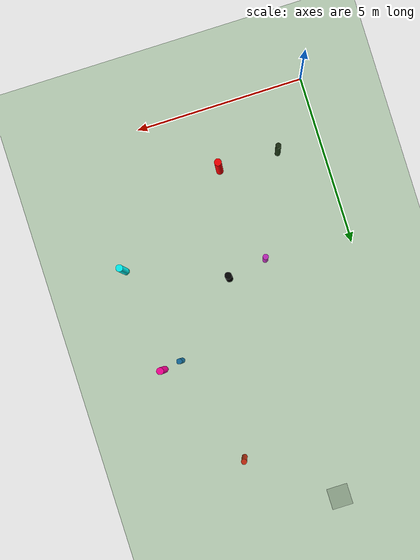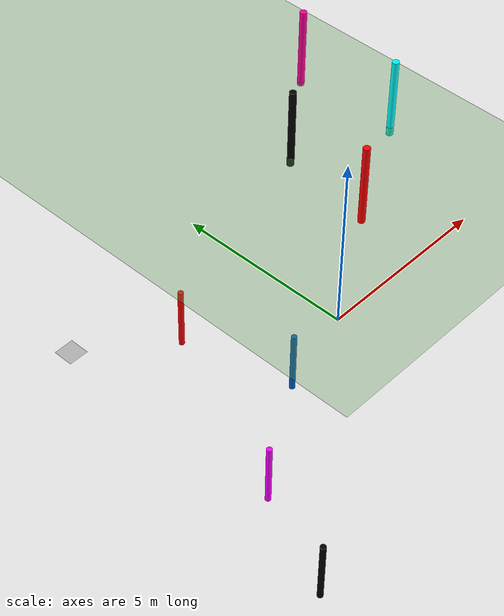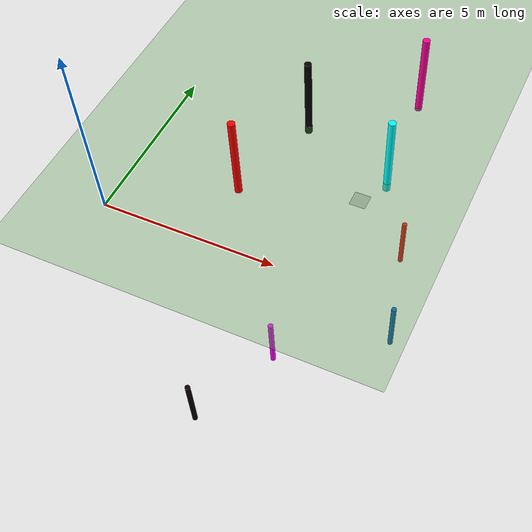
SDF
<sdf version="1.7">
 <world name="default">
  <physics type="ode">
   <ode>
    <solver>
     <type>quick</type>
     <iters>100</iters>
     <sor>1</sor>
     <use_dynamic_moi_rescaling>0</use_dynamic_moi_rescaling>
    </solver>
    <constraints>
     <cfm>0</cfm>
     <erp>0.9</erp>
     <contact_max_correcting_vel>0.1</contact_max_correcting_vel>
     <contact_surface_layer>0</contact_surface_layer>
    </constraints>
   </ode>
   <real_time_update_rate>1000</real_time_update_rate>
   <max_step_size>0.001</max_step_size>
   <real_time_factor>1</real_time_factor>
  </physics>
  <scene>
   <sky><clouds><speed>12</speed></clouds></sky>
   <ambient>0.4 0.4 0.4 1</ambient>
   <background>0.25 0.25 0.25 1</background>
   <shadows>1</shadows>
  </scene>
  <model name="ground_plane">
   <static>1</static>
   <link name="link">
    <collision name="collision">
     <geometry><plane><normal>0 0 1</normal><size>5000 5000</size></plane></geometry>
     <surface><friction><ode><mu>1</mu><mu2>1</mu2></ode></friction></surface>
    </collision>
    <visual name="grass">
     <pose>0 0 -0.1 0 -0 0</pose>
     <cast_shadows>0</cast_shadows>
     <geometry><plane><normal>0 0 1</normal><size>5000 5000</size></plane></geometry>
     <material>
      <script><uri>file://media/materials/scripts/gazebo.material</uri><name>Gazebo/Grass</name></script>
     </material>
    </visual>
   </link>
  </model>
  <light name="sun" type="directional">
   <pose>0 0 10 0 -0 0</pose>
   <diffuse>0.8 0.8 0.8 1</diffuse>
   <specular>0.2 0.2 0.2 1</specular>
   <attenuation>
    <range>1000</range>
    <constant>0.9</constant>
    <linear>0.01</linear>
    <quadratic>0.001</quadratic>
   </attenuation>
   <direction>-0.5 0.1 -0.9</direction>
   <spot><inner_angle>0</inner_angle><outer_angle>0</outer_angle><falloff>0</falloff></spot>
  </light>
  <gravity>0 0 -9.8</gravity>
  <magnetic_field>6e-06 2.3e-05 -4.2e-05</magnetic_field>
  <atmosphere type="adiabatic"/>
  <spherical_coordinates>
   <surface_model>EARTH_WGS84</surface_model>
   <latitude_deg>0</latitude_deg>
   <longitude_deg>0</longitude_deg>
   <elevation>0</elevation>
   <heading_deg>0</heading_deg>
  </spherical_coordinates>
  <model name="SAE_slalom">
   <static>1</static>
   <link name="link">
    <collision name="collision">
     <geometry>
      <mesh><scale>1 1 1</scale><uri>//SAE_slalom/meshes/SAE_slalom.dae</uri></mesh>
      <surface><friction><ode><mu>1.2</mu><mu2>1.2</mu2></ode></friction></surface>
     </geometry>
    </collision>
    <visual name="visual">
     <geometry><mesh><scale>1 1 1</scale><uri>model://SAE_slalom/meshes/SAE_slalom.dae</uri></mesh></geometry>
    </visual>
   </link>
   <pose>2.33861 4.1931 -13.082 0 -0 0</pose>
  </model>
  <model name="black_pole">
   <static>1</static>
   <link name="link">
    <collision name="collision">
     <geometry>
      <mesh><scale>1 1 1</scale><uri>//black_pole/meshes/black_pole.dae</uri></mesh>
      <surface><friction><ode><mu>1.2</mu><mu2>1.2</mu2></ode></friction></surface>
     </geometry>
    </collision>
    <visual name="visual">
     <geometry><mesh><scale>1 1 1</scale><uri>model://black_pole/meshes/black_pole.dae</uri></mesh></geometry>
    </visual>
   </link>
   <pose>0.117467 6.47831 -2.17703 0 -0 0</pose>
  </model>
  <model name="red_pole">
   <static>1</static>
   <link name="link">
    <collision name="collision">
     <geometry>
      <mesh><scale>1 1 1</scale><uri>//red_pole/meshes/red_pole.dae</uri></mesh>
      <surface><friction><ode><mu>1.2</mu><mu2>1.2</mu2></ode></friction></surface>
     </geometry>
    </collision>
    <visual name="visual">
     <geometry><mesh><scale>1 1 1</scale><uri>model://red_pole/meshes/red_pole.dae</uri></mesh></geometry>
    </visual>
   </link>
   <pose>-0.558478 3.39285 -1.84561 0 -0 0</pose>
  </model>
  <model name="blue_pole">
   <static>1</static>
   <link name="link">
    <collision name="collision">
     <geometry>
      <mesh><scale>1 1 1</scale><uri>//blue_pole/meshes/blue_pole.dae</uri></mesh>
      <surface><friction><ode><mu>1.2</mu><mu2>1.2</mu2></ode></friction></surface>
     </geometry>
    </collision>
    <visual name="visual">
     <geometry><mesh><scale>1 1 1</scale><uri>model://blue_pole/meshes/blue_pole.dae</uri></mesh></geometry>
    </visual>
   </link>
   <pose>2.96945 5.35855 -2.18695 0 -0 0</pose>
  </model>
  <model name="pink_pole">
   <static>1</static>
   <link name="link">
    <collision name="collision">
     <geometry>
      <mesh><scale>1 1 1</scale><uri>//pink_pole/meshes/pink_pole.dae</uri></mesh>
      <surface><friction><ode><mu>1.2</mu><mu2>1.2</mu2></ode></friction></surface>
     </geometry>
    </collision>
    <visual name="visual">
     <geometry><mesh><scale>1 1 1</scale><uri>model://pink_pole/meshes/pink_pole.dae</uri></mesh></geometry>
    </visual>
   </link>
   <pose>2.73426 8.45848 -2.00761 0 -0 0</pose>
  </model>
 </world>
</sdf>
